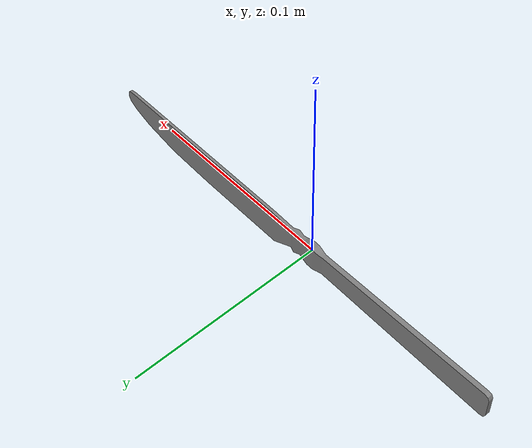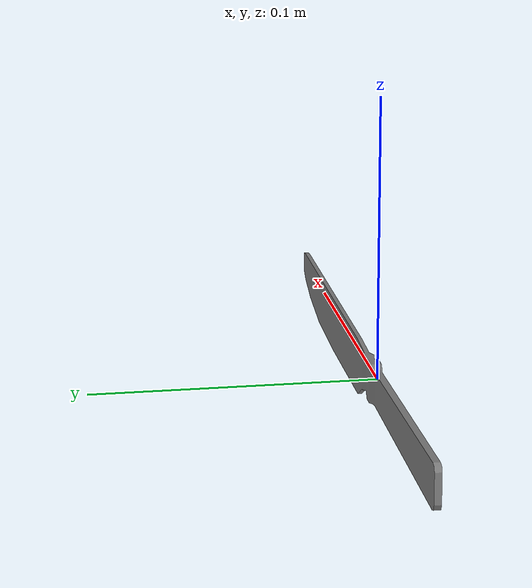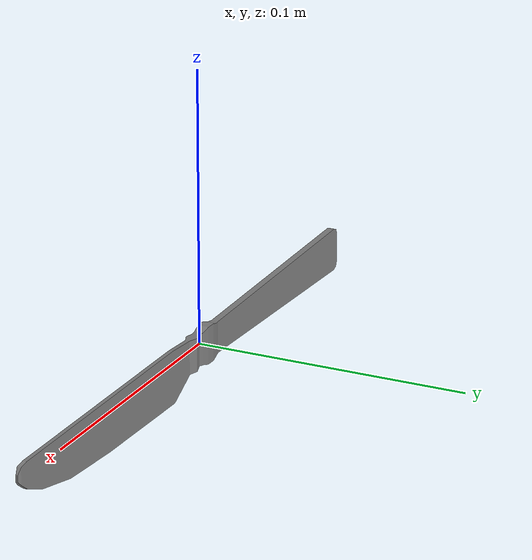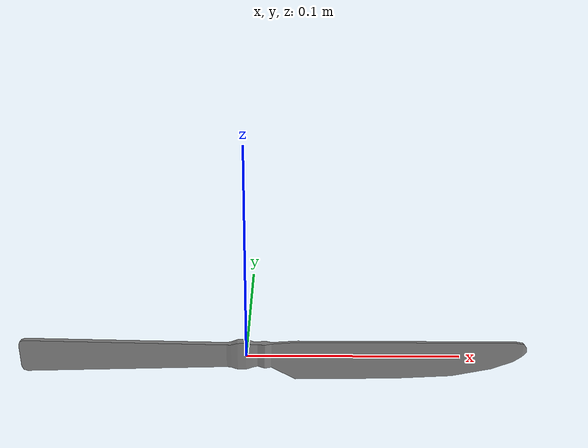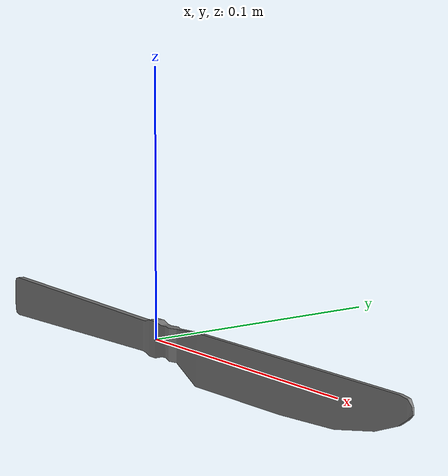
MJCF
<?xml version="1.0" encoding="utf-8"?>
<mujoco model="knife_with_aruco">

    <include file="knife.xml"/>
    <include file="../aruco_markers/aruco_markers.xml"/>

    <worldbody>

        <body name="knife_with_aruco">

            <!-- Central site used for reference or visualization -->
            <site name="center" pos="0 0 0" euler="0 0 0" type="sphere" size="0.0001 0.0001 0.0001" rgba="0.9 0.9 0.9 1" group="4"/>

            <!-- Aruco marker 1 -->
            <geom name="aruco1_collider" type="box" size="0.0225 0.0225 0.0005" material="card" pos="0.155 -0.021 0.005" euler="0 3.14 1.57" mass="0" rgba="1 1 1 1" contype="0" conaffinity="0" group="3"/>
            <geom type="box" size="0.0175 0.0175 0.001" material="aruco_1" pos="0.155 -0.021 0.005" euler="0 3.14 1.57" rgba="1 1 1 1" contype="0" conaffinity="0" group="3"/>
            <site name="aruco_1" pos="0.155 -0.021 0.005" euler="0 3.14 1.57" type="sphere" size="0.0001" group="4"/>

            <!-- Aruco marker 2 -->
            <geom type="box" size="0.0175 0.0175 0.001" material="aruco_2" pos="-0.045 -0.021 0.005" euler="0 3.14 1.57" rgba="1 1 1 1" contype="0" conaffinity="0" group="3"/>
            <site name="aruco_2" pos="-0.045 -0.021 0.005" euler="0 3.14 1.57" type="sphere" size="0.0001" group="4"/>
        </body>
    </worldbody>
</mujoco>

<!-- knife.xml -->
<mujoco model="knife">
  <compiler angle="radian" meshdir="assets" texturedir="assets" autolimits="true"/>
  <asset>
    <mesh file="props_knife.obj"/>
  </asset>
  <default>
    <default class="knife">
      <material specular="0.9" shininess="0.9" rgba="0.8 0.8 0.8 1"/>
      <default class="visual">
        <geom type="mesh" contype="0" conaffinity="0" group="2"/>
      </default>
      <default class="collision">
        <geom type="mesh" group="3"/>
      </default>
      <geom euler="3.14 -1.57 3.14"/>
    </default>
  </default>
  <worldbody>
    <body name="knife" childclass="knife">
      <geom name="mesh" mesh="props_knife" class="visual"/>
      <geom name="collider" mesh="props_knife" class="collision"/>
    </body>
  </worldbody>
</mujoco>

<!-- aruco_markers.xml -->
<mujoco>
    <asset>
        <!-- Definition of ArUco Textures -->
        <texture type="2d" name="marker0" file="aruco_4x4_0.png"/>
        <texture type="2d" name="marker1" file="aruco_4x4_1.png"/>
        <texture type="2d" name="marker2" file="aruco_4x4_2.png"/>

        <!-- Definition of Materials Using ArUco Textures -->
        <material name="card"/>
        <material name="aruco_0" texture="marker0"/>
        <material name="aruco_1" texture="marker1"/>
        <material name="aruco_2" texture="marker2"/>
    </asset>
</mujoco>
